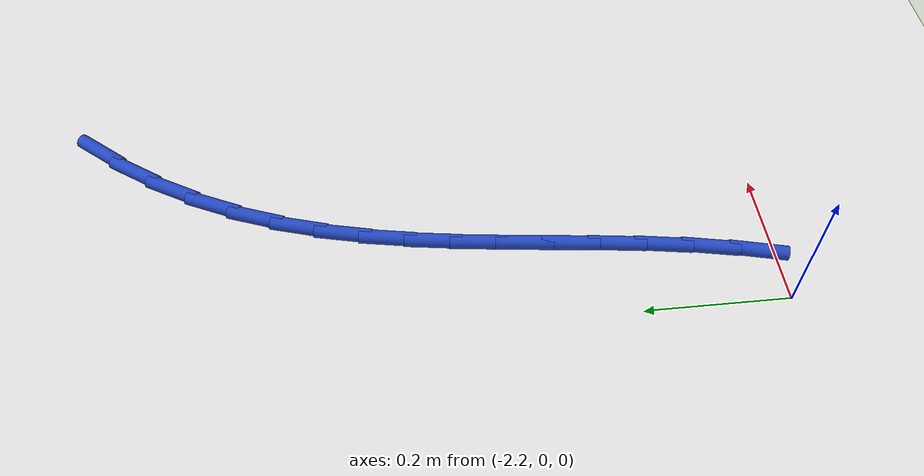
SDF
<sdf version="1.6">
 <world name="default">
  <model name="ground_plane">
   <static>1</static>
   <link name="link">
    <collision name="collision">
     <geometry><plane><normal>0 0 1</normal><size>100 100</size></plane></geometry>
     <surface><friction><ode><mu>100</mu><mu2>50</mu2></ode></friction></surface>
    </collision>
    <visual name="visual">
     <cast_shadows>0</cast_shadows>
     <geometry><plane><normal>0 0 1</normal><size>100 100</size></plane></geometry>
     <material>
      <script><uri>file://media/materials/scripts/gazebo.material</uri><name>Gazebo/WhiteGlow</name></script>
     </material>
    </visual>
   </link>
  </model>
  <model name="line">
   <link name="link_43">
    <pose>-1.8534373553713586 0.9275150771600988 0.01 0 1.57 0.8648300103079363</pose>
    <collision name="collision">
     <geometry><cylinder><radius>0.01</radius><length>0.08</length></cylinder></geometry>
    </collision>
    <visual name="visual">
     <material>
      <script><name>Gazebo/Blue</name><uri>file://media/materials/scripts/gazebo.material</uri></script>
     </material>
     <geometry><cylinder><radius>0.01</radius><length>0.08</length></cylinder></geometry>
    </visual>
   </link>
   <link name="link_44">
    <pose>-1.8969007470408927 0.8765339667985923 0.01 0 1.57 0.9560356128588351</pose>
    <collision name="collision">
     <geometry><cylinder><radius>0.01</radius><length>0.08</length></cylinder></geometry>
    </collision>
    <visual name="visual">
     <material>
      <script><name>Gazebo/Blue</name><uri>file://media/materials/scripts/gazebo.material</uri></script>
     </material>
     <geometry><cylinder><radius>0.01</radius><length>0.08</length></cylinder></geometry>
    </visual>
   </link>
   <link name="link_45">
    <pose>-1.9356522626061556 0.8216473764241581 0.01 0 1.57 1.0419468851394609</pose>
    <collision name="collision">
     <geometry><cylinder><radius>0.01</radius><length>0.08</length></cylinder></geometry>
    </collision>
    <visual name="visual">
     <material>
      <script><name>Gazebo/Blue</name><uri>file://media/materials/scripts/gazebo.material</uri></script>
     </material>
     <geometry><cylinder><radius>0.01</radius><length>0.08</length></cylinder></geometry>
    </visual>
   </link>
   <link name="link_46">
    <pose>-1.9692904732165926 0.7640844177606173 0.01 0 1.57 1.1260069213527908</pose>
    <collision name="collision">
     <geometry><cylinder><radius>0.01</radius><length>0.08</length></cylinder></geometry>
    </collision>
    <visual name="visual">
     <material>
      <script><name>Gazebo/Blue</name><uri>file://media/materials/scripts/gazebo.material</uri></script>
     </material>
     <geometry><cylinder><radius>0.01</radius><length>0.08</length></cylinder></geometry>
    </visual>
   </link>
   <link name="link_47">
    <pose>-1.997420305929565 0.7050680625468343 0.01 0 1.57 1.2077777195128732</pose>
    <collision name="collision">
     <geometry><cylinder><radius>0.01</radius><length>0.08</length></cylinder></geometry>
    </collision>
    <visual name="visual">
     <material>
      <script><name>Gazebo/Blue</name><uri>file://media/materials/scripts/gazebo.material</uri></script>
     </material>
     <geometry><cylinder><radius>0.01</radius><length>0.08</length></cylinder></geometry>
    </visual>
   </link>
   <link name="link_48">
    <pose>-2.0200869191048803 0.645396006760942 0.01 0 1.57 1.280865934478119</pose>
    <collision name="collision">
     <geometry><cylinder><radius>0.01</radius><length>0.08</length></cylinder></geometry>
    </collision>
    <visual name="visual">
     <material>
      <script><name>Gazebo/Blue</name><uri>file://media/materials/scripts/gazebo.material</uri></script>
     </material>
     <geometry><cylinder><radius>0.01</radius><length>0.08</length></cylinder></geometry>
    </visual>
   </link>
   <link name="link_49">
    <pose>-2.0380540267290486 0.5851718015324961 0.01 0 1.57 1.3427257755328306</pose>
    <collision name="collision">
     <geometry><cylinder><radius>0.01</radius><length>0.08</length></cylinder></geometry>
    </collision>
    <visual name="visual">
     <material>
      <script><name>Gazebo/Blue</name><uri>file://media/materials/scripts/gazebo.material</uri></script>
     </material>
     <geometry><cylinder><radius>0.01</radius><length>0.08</length></cylinder></geometry>
    </visual>
   </link>
   <link name="link_50">
    <pose>-2.0521515872020792 0.5244350040333545 0.01 0 1.57 1.3920672860528946</pose>
    <collision name="collision">
     <geometry><cylinder><radius>0.01</radius><length>0.08</length></cylinder></geometry>
    </collision>
    <visual name="visual">
     <material>
      <script><name>Gazebo/Blue</name><uri>file://media/materials/scripts/gazebo.material</uri></script>
     </material>
     <geometry><cylinder><radius>0.01</radius><length>0.08</length></cylinder></geometry>
    </visual>
   </link>
   <link name="link_51">
    <pose>-2.0632095589239827 0.4632251714353771 0.01 0 1.57 1.4282291733803594</pose>
    <collision name="collision">
     <geometry><cylinder><radius>0.01</radius><length>0.08</length></cylinder></geometry>
    </collision>
    <visual name="visual">
     <material>
      <script><name>Gazebo/Blue</name><uri>file://media/materials/scripts/gazebo.material</uri></script>
     </material>
     <geometry><cylinder><radius>0.01</radius><length>0.08</length></cylinder></geometry>
    </visual>
   </link>
   <link name="link_52">
    <pose>-2.0720579002947686 0.4015818609104211 0.01 0 1.57 1.450982841268607</pose>
    <collision name="collision">
     <geometry><cylinder><radius>0.01</radius><length>0.08</length></cylinder></geometry>
    </collision>
    <visual name="visual">
     <material>
      <script><name>Gazebo/Blue</name><uri>file://media/materials/scripts/gazebo.material</uri></script>
     </material>
     <geometry><cylinder><radius>0.01</radius><length>0.08</length></cylinder></geometry>
    </visual>
   </link>
   <link name="link_53">
    <pose>-2.0795265697144467 0.3395446296303464 0.01 0 1.57 1.460351953660946</pose>
    <collision name="collision">
     <geometry><cylinder><radius>0.01</radius><length>0.08</length></cylinder></geometry>
    </collision>
    <visual name="visual">
     <material>
      <script><name>Gazebo/Blue</name><uri>file://media/materials/scripts/gazebo.material</uri></script>
     </material>
     <geometry><cylinder><radius>0.01</radius><length>0.08</length></cylinder></geometry>
    </visual>
   </link>
   <link name="link_54">
    <pose>-2.086445525583028 0.2771530347670104 0.01 0 1.57 1.456488731990726</pose>
    <collision name="collision">
     <geometry><cylinder><radius>0.01</radius><length>0.08</length></cylinder></geometry>
    </collision>
    <visual name="visual">
     <material>
      <script><name>Gazebo/Blue</name><uri>file://media/materials/scripts/gazebo.material</uri></script>
     </material>
     <geometry><cylinder><radius>0.01</radius><length>0.08</length></cylinder></geometry>
    </visual>
   </link>
   <link name="link_55">
    <pose>-2.093644726300522 0.214446633492273 0.01 0 1.57 1.439620203608737</pose>
    <collision name="collision">
     <geometry><cylinder><radius>0.01</radius><length>0.08</length></cylinder></geometry>
    </collision>
    <visual name="visual">
     <material>
      <script><name>Gazebo/Blue</name><uri>file://media/materials/scripts/gazebo.material</uri></script>
     </material>
     <geometry><cylinder><radius>0.01</radius><length>0.08</length></cylinder></geometry>
    </visual>
   </link>
   <link name="link_56">
    <pose>-2.1019541302669387 0.15146498297799182 0.01 0 1.57 1.4100627994923327</pose>
    <collision name="collision">
     <geometry><cylinder><radius>0.01</radius><length>0.08</length></cylinder></geometry>
    </collision>
    <visual name="visual">
     <material>
      <script><name>Gazebo/Blue</name><uri>file://media/materials/scripts/gazebo.material</uri></script>
     </material>
     <geometry><cylinder><radius>0.01</radius><length>0.08</length></cylinder></geometry>
    </visual>
   </link>
   <link name="link_57">
    <pose>-2.112203695882288 0.08824764039602634 0.01 0 1.57 1.3688416580180907</pose>
    <collision name="collision">
     <geometry><cylinder><radius>0.01</radius><length>0.08</length></cylinder></geometry>
    </collision>
    <visual name="visual">
     <material>
      <script><name>Gazebo/Blue</name><uri>file://media/materials/scripts/gazebo.material</uri></script>
     </material>
     <geometry><cylinder><radius>0.01</radius><length>0.08</length></cylinder></geometry>
    </visual>
   </link>
   <link name="link_58">
    <pose>-2.125186870968983 0.024836459501677483 0.01 0 1.57 1.3296095517657578</pose>
    <collision name="collision">
     <geometry><cylinder><radius>0.01</radius><length>0.08</length></cylinder></geometry>
    </collision>
    <visual name="visual">
     <material>
      <script><name>Gazebo/Blue</name><uri>file://media/materials/scripts/gazebo.material</uri></script>
     </material>
     <geometry><cylinder><radius>0.01</radius><length>0.08</length></cylinder></geometry>
    </visual>
   </link>
  </model>
 </world>
</sdf>
